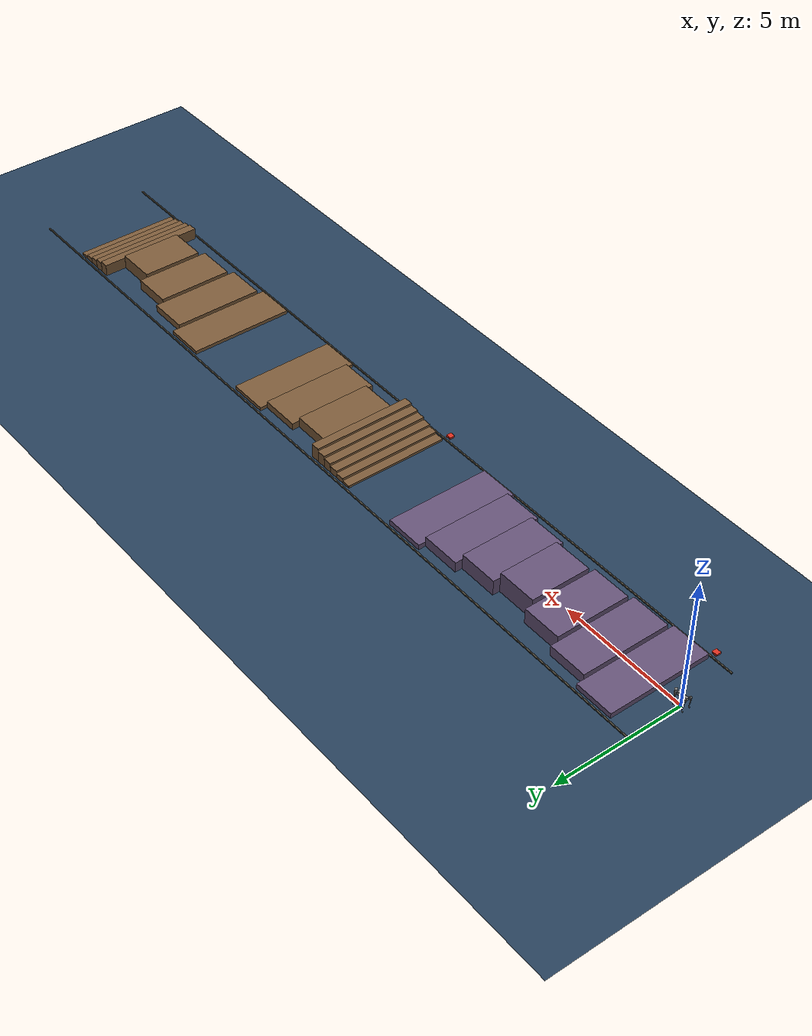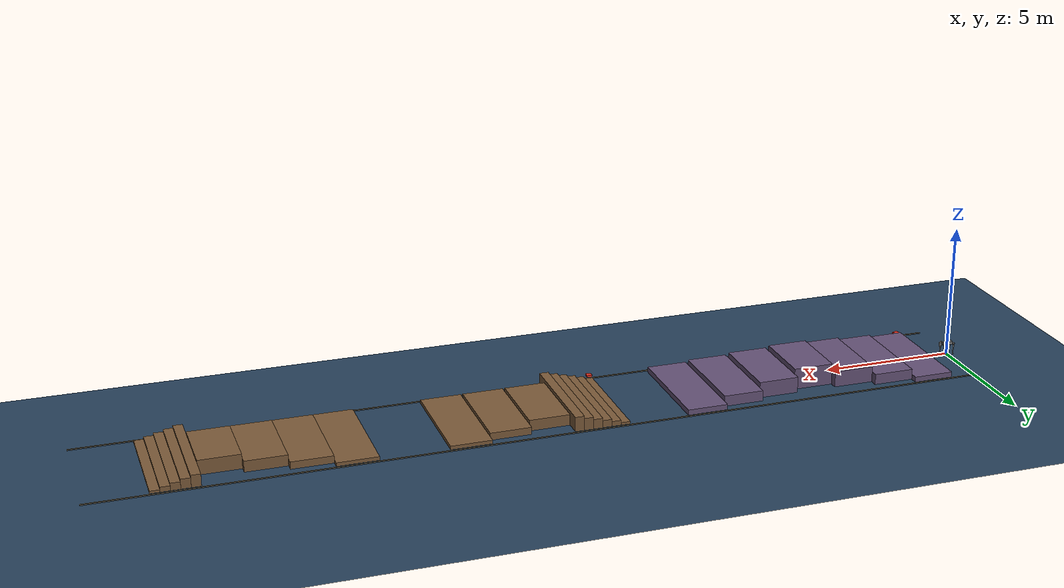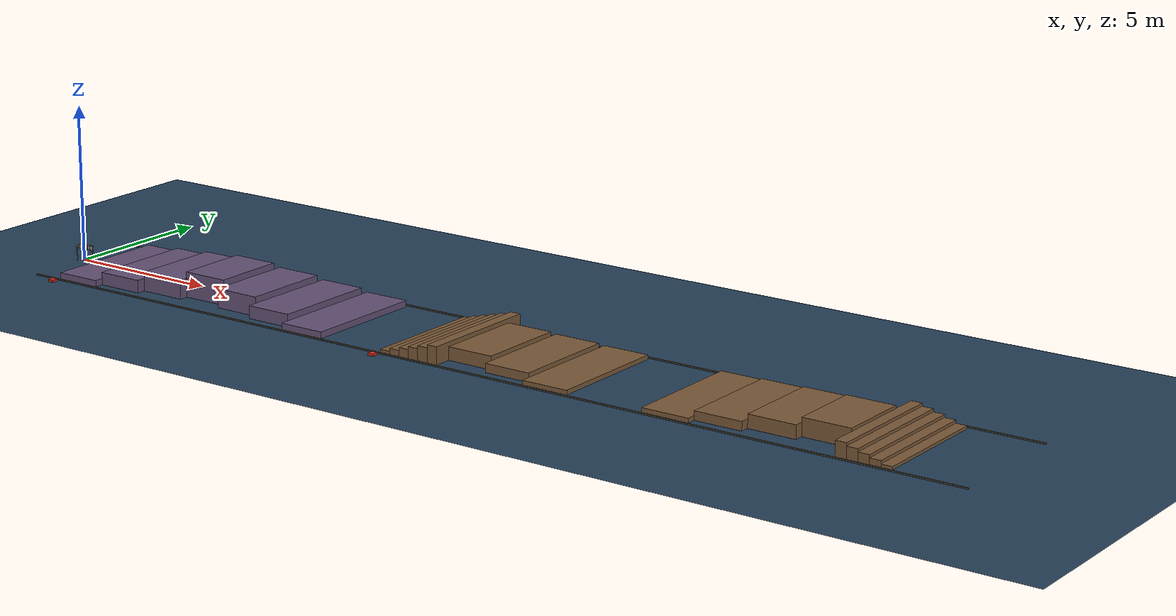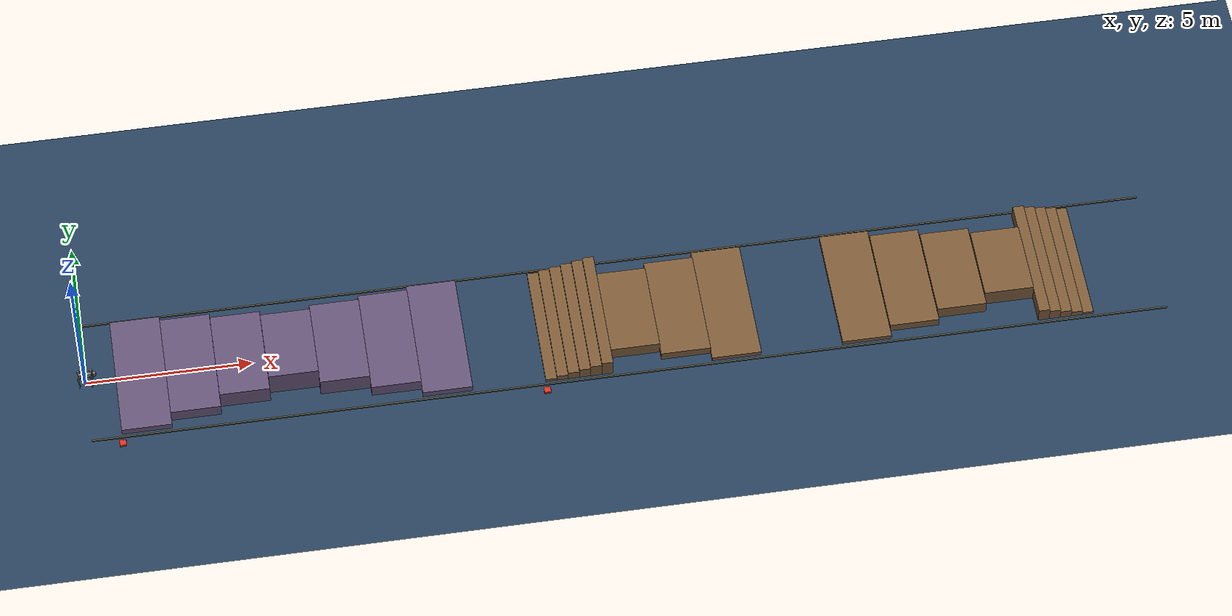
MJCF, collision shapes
<mujoco model="go2 terrain scene">
  <include file="go2.xml" />

  <statistic center="3.00 0 0.35" extent="7.00" />

  <visual>
    <headlight diffuse="0.6 0.6 0.6" ambient="0.3 0.3 0.3" specular="0 0 0" />
    <rgba haze="0.15 0.25 0.35 1" />
    <global azimuth="-130" elevation="-20" />
  </visual>

  <asset>
    <texture type="skybox" builtin="gradient" rgb1="0.3 0.5 0.7" rgb2="0 0 0" width="512" height="3072" />
    <texture type="2d" name="groundplane" builtin="checker" mark="edge" rgb1="0.2 0.3 0.4" rgb2="0.1 0.2 0.3" markrgb="0.8 0.8 0.8" width="300" height="300" />
    <material name="groundplane" texture="groundplane" texuniform="true" texrepeat="5 5" reflectance="0.2" />
    <material name="rough_mat" rgba="0.36 0.34 0.28 1" />
    <material name="rough_dark_mat" rgba="0.25 0.25 0.22 1" />
    <material name="gap_mat" rgba="0.18 0.28 0.32 1" />
    <material name="gap_hard_mat" rgba="0.12 0.20 0.25 1" />
    <material name="pit_mat" rgba="0.20 0.18 0.16 1" />
    <material name="stair_mat" rgba="0.45 0.42 0.36 1" />
    <material name="platform_mat" rgba="0.39 0.32 0.46 1" />
    <material name="platform_high_mat" rgba="0.48 0.35 0.22 1" />
    <material name="marker_red" rgba="0.85 0.18 0.12 1" />
  </asset>

  <worldbody>
    <light pos="0 0 4.0" dir="0 0 -1" directional="true" />
    <geom name="floor" size="0 0 0.05" type="plane" material="groundplane" friction="0.9 0.6 0.02" group="0" />

    <!-- pyramid_stairs_high: step_height_range=(0.08,0.45), step_width=1.5, platform_width=4.0 -->
    <geom name="start_pyramid_stairs_high_0000" type="box" pos="0.900 -2.350 0.035" size="0.100 0.100 0.035" material="marker_red" friction="0.9 0.6 0.02" group="1" />
    <geom name="pyramid_stairs_high_up_01_0001" type="box" pos="1.650 0.000 0.100" size="0.750 2.000 0.100" material="platform_mat" friction="0.9 0.6 0.02" group="0" />
    <geom name="pyramid_stairs_high_up_02_0002" type="box" pos="3.150 0.000 0.200" size="0.750 1.720 0.200" material="platform_mat" friction="0.9 0.6 0.02" group="0" />
    <geom name="pyramid_stairs_high_up_03_0003" type="box" pos="4.650 0.000 0.300" size="0.750 1.440 0.300" material="platform_mat" friction="0.9 0.6 0.02" group="0" />
    <geom name="pyramid_stairs_high_up_04_0004" type="box" pos="6.150 0.000 0.400" size="0.750 1.160 0.400" material="platform_mat" friction="0.9 0.6 0.02" group="0" />
    <geom name="pyramid_stairs_high_down_03_0005" type="box" pos="7.650 0.000 0.300" size="0.750 1.440 0.300" material="platform_mat" friction="0.9 0.6 0.02" group="0" />
    <geom name="pyramid_stairs_high_down_02_0006" type="box" pos="9.150 0.000 0.200" size="0.750 1.720 0.200" material="platform_mat" friction="0.9 0.6 0.02" group="0" />
    <geom name="pyramid_stairs_high_down_01_0007" type="box" pos="10.650 0.000 0.100" size="0.750 2.000 0.100" material="platform_mat" friction="0.9 0.6 0.02" group="0" />

    <!-- pyramid_stairs_inv_high: step_height_range=(0.08,0.45), step_width=1.5, platform_width=4.0 -->
    <geom name="start_pyramid_stairs_inv_high_0008" type="box" pos="13.600 -2.350 0.035" size="0.100 0.100 0.035" material="marker_red" friction="0.9 0.6 0.02" group="1" />
    <geom name="pyramid_stairs_inv_high_entry_00_0009" type="box" pos="13.770 0.000 0.045" size="0.170 2.000 0.045" material="platform_high_mat" friction="0.9 0.6 0.02" group="0" />
    <geom name="pyramid_stairs_inv_high_entry_01_0010" type="box" pos="14.110 0.000 0.091" size="0.170 2.000 0.091" material="platform_high_mat" friction="0.9 0.6 0.02" group="0" />
    <geom name="pyramid_stairs_inv_high_entry_02_0011" type="box" pos="14.450 0.000 0.136" size="0.170 2.000 0.136" material="platform_high_mat" friction="0.9 0.6 0.02" group="0" />
    <geom name="pyramid_stairs_inv_high_entry_03_0012" type="box" pos="14.790 0.000 0.181" size="0.170 2.000 0.181" material="platform_high_mat" friction="0.9 0.6 0.02" group="0" />
    <geom name="pyramid_stairs_inv_high_entry_04_0013" type="box" pos="15.130 0.000 0.226" size="0.170 2.000 0.226" material="platform_high_mat" friction="0.9 0.6 0.02" group="0" />
    <geom name="pyramid_stairs_inv_high_entry_05_0014" type="box" pos="15.470 0.000 0.272" size="0.170 2.000 0.272" material="platform_high_mat" friction="0.9 0.6 0.02" group="0" />
    <geom name="pyramid_stairs_inv_high_down_03_0015" type="box" pos="16.390 0.000 0.204" size="0.750 1.440 0.204" material="platform_high_mat" friction="0.9 0.6 0.02" group="0" />
    <geom name="pyramid_stairs_inv_high_down_02_0016" type="box" pos="17.890 0.000 0.136" size="0.750 1.720 0.136" material="platform_high_mat" friction="0.9 0.6 0.02" group="0" />
    <geom name="pyramid_stairs_inv_high_down_01_0017" type="box" pos="19.390 0.000 0.068" size="0.750 2.000 0.068" material="platform_high_mat" friction="0.9 0.6 0.02" group="0" />
    <geom name="pyramid_stairs_inv_high_up_01_0018" type="box" pos="23.365 0.000 0.068" size="0.750 2.000 0.068" material="platform_high_mat" friction="0.9 0.6 0.02" group="0" />
    <geom name="pyramid_stairs_inv_high_up_02_0019" type="box" pos="24.865 0.000 0.136" size="0.750 1.720 0.136" material="platform_high_mat" friction="0.9 0.6 0.02" group="0" />
    <geom name="pyramid_stairs_inv_high_up_03_0020" type="box" pos="26.365 0.000 0.204" size="0.750 1.440 0.204" material="platform_high_mat" friction="0.9 0.6 0.02" group="0" />
    <geom name="pyramid_stairs_inv_high_up_04_0021" type="box" pos="27.865 0.000 0.272" size="0.750 1.160 0.272" material="platform_high_mat" friction="0.9 0.6 0.02" group="0" />
    <geom name="pyramid_stairs_inv_high_exit_00_0022" type="box" pos="28.785 0.000 0.226" size="0.170 2.000 0.226" material="platform_high_mat" friction="0.9 0.6 0.02" group="0" />
    <geom name="pyramid_stairs_inv_high_exit_01_0023" type="box" pos="29.125 0.000 0.181" size="0.170 2.000 0.181" material="platform_high_mat" friction="0.9 0.6 0.02" group="0" />
    <geom name="pyramid_stairs_inv_high_exit_02_0024" type="box" pos="29.465 0.000 0.136" size="0.170 2.000 0.136" material="platform_high_mat" friction="0.9 0.6 0.02" group="0" />
    <geom name="pyramid_stairs_inv_high_exit_03_0025" type="box" pos="29.805 0.000 0.091" size="0.170 2.000 0.091" material="platform_high_mat" friction="0.9 0.6 0.02" group="0" />
    <geom name="pyramid_stairs_inv_high_exit_04_0026" type="box" pos="30.145 0.000 0.045" size="0.170 2.000 0.045" material="platform_high_mat" friction="0.9 0.6 0.02" group="0" />

    <!-- visual side lanes outside normal height scan width -->
    <geom name="side_lane_0_0027" type="box" pos="16.277 -2.120 0.018" size="16.277 0.025 0.018" material="rough_mat" friction="0.9 0.6 0.02" group="1" />
    <geom name="side_lane_1_0028" type="box" pos="16.277 2.120 0.018" size="16.277 0.025 0.018" material="rough_mat" friction="0.9 0.6 0.02" group="1" />
  </worldbody>
</mujoco>

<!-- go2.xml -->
<mujoco model="go2">
  <compiler angle="radian" meshdir="assets" autolimits="true" />

  <option cone="elliptic" impratio="100" />

  <default>
    <default class="go2">
      <geom friction="0.4" margin="0.001" condim="1"/>
      <joint axis="0 1 0" damping="0.1" armature="0.01" frictionloss="0.2"/>
      <motor ctrlrange="-23.7 23.7"/>
      <default class="abduction">
        <joint axis="1 0 0" range="-1.0472 1.0472"/>
      </default>
      <default class="hip">
        <default class="front_hip">
          <joint range="-1.5708 3.4907"/>
        </default>
        <default class="back_hip">
          <joint range="-0.5236 4.5379"/>
        </default>
      </default>
      <default class="knee">
        <joint range="-2.7227 -0.83776"/>
        <motor ctrlrange="-45.43 45.43"/>
      </default>
      <default class="visual">
        <geom type="mesh" contype="0" conaffinity="0" group="2"/>
      </default>
      <default class="collision">
        <geom group="3"/>
        <default class="foot">
          <geom size="0.022" pos="-0.002 0 -0.213" priority="1" condim="6"
            friction="0.4 0.02 0.01"/>
        </default>
      </default>
    </default>
  </default>

  <asset>
    <material name="metal" rgba=".9 .95 .95 1" />
    <material name="black" rgba="0 0 0 1" />
    <material name="white" rgba="1 1 1 1" />
    <material name="gray" rgba="0.671705 0.692426 0.774270 1" />

    <mesh file="base_0.obj" />
    <mesh file="base_1.obj" />
    <mesh file="base_2.obj" />
    <mesh file="base_3.obj" />
    <mesh file="base_4.obj" />
    <mesh file="hip_0.obj" />
    <mesh file="hip_1.obj" />
    <mesh file="thigh_0.obj" />
    <mesh file="thigh_1.obj" />
    <mesh file="thigh_mirror_0.obj" />
    <mesh file="thigh_mirror_1.obj" />
    <mesh file="calf_0.obj" />
    <mesh file="calf_1.obj" />
    <mesh file="calf_mirror_0.obj" />
    <mesh file="calf_mirror_1.obj" />
    <mesh file="foot.obj" />
  </asset>

  <worldbody>
    <body name="base_link" pos="0 0 0.445" childclass="go2">
      <inertial pos="0.021112 0 -0.005366" quat="-0.000543471 0.713435 -0.00173769 0.700719"
        mass="6.921"
        diaginertia="0.107027 0.0980771 0.0244531" />
      <freejoint />
      <geom mesh="base_0" material="black" class="visual" />
      <geom mesh="base_1" material="black" class="visual" />
      <geom mesh="base_2" material="black" class="visual" />
      <geom mesh="base_3" material="white" class="visual" />
      <geom mesh="base_4" material="gray" class="visual" />
      <geom size="0.1881 0.04675 0.057" type="box" class="collision" />
      <geom size="0.05 0.045" pos="0.285 0 0.01" type="cylinder" class="collision" />
      <geom size="0.047" pos="0.293 0 -0.06" class="collision" />
      <site name="imu" pos="-0.02557 0 0.04232" />
      <body name="FL_hip" pos="0.1934 0.0465 0">
        <inertial pos="-0.0054 0.00194 -0.000105" quat="0.497014 0.499245 0.505462 0.498237"
          mass="0.678"
          diaginertia="0.00088403 0.000596003 0.000479967" />
        <joint name="FL_hip_joint" class="abduction" />
        <geom mesh="hip_0" material="metal" class="visual" />
        <geom mesh="hip_1" material="gray" class="visual" />
        <geom size="0.046 0.02" pos="0 0.08 0" quat="1 1 0 0" type="cylinder" class="collision" />
        <body name="FL_thigh" pos="0 0.0955 0">
          <inertial pos="-0.00374 -0.0223 -0.0327" quat="0.829533 0.0847635 -0.0200632 0.551623"
            mass="1.152"
            diaginertia="0.00594973 0.00584149 0.000878787" />
          <joint name="FL_thigh_joint" class="front_hip" />
          <geom mesh="thigh_0" material="metal" class="visual" />
          <geom mesh="thigh_1" material="gray" class="visual" />
          <geom size="0.1065 0.01225 0.017" pos="0 0 -0.1065" quat="0.707107 0 0.707107 0"
            type="box" class="collision" />
          <body name="FL_calf" pos="0 0 -0.213">
            <inertial pos="0.00629595 -0.000622121 -0.141417"
              quat="0.710672 0.00154099 -0.00450087 0.703508"
              mass="0.241352" diaginertia="0.0014901 0.00146356 5.31397e-05" />
            <joint name="FL_calf_joint" class="knee" />
            <geom mesh="calf_0" material="gray" class="visual" />
            <geom mesh="calf_1" material="black" class="visual" />
            <geom size="0.012 0.06" pos="0.008 0 -0.06" quat="0.994493 0 -0.104807 0"
              type="cylinder" class="collision" />
            <geom size="0.011 0.0325" pos="0.02 0 -0.148" quat="0.999688 0 0.0249974 0"
              type="cylinder" class="collision" />
            <geom pos="0 0 -0.213" mesh="foot" class="visual" material="black" />
            <geom name="FL" class="foot" />
            <body name="FL_foot" pos="0 0 -0.213" />
          </body>
        </body>
      </body>
      <body name="FR_hip" pos="0.1934 -0.0465 0">
        <inertial pos="-0.0054 -0.00194 -0.000105" quat="0.498237 0.505462 0.499245 0.497014"
          mass="0.678"
          diaginertia="0.00088403 0.000596003 0.000479967" />
        <joint name="FR_hip_joint" class="abduction" />
        <geom mesh="hip_0" material="metal" class="visual" quat="4.63268e-05 1 0 0" />
        <geom mesh="hip_1" material="gray" class="visual" quat="4.63268e-05 1 0 0" />
        <geom size="0.046 0.02" pos="0 -0.08 0" quat="0.707107 0.707107 0 0" type="cylinder"
          class="collision" />
        <body name="FR_thigh" pos="0 -0.0955 0">
          <inertial pos="-0.00374 0.0223 -0.0327" quat="0.551623 -0.0200632 0.0847635 0.829533"
            mass="1.152"
            diaginertia="0.00594973 0.00584149 0.000878787" />
          <joint name="FR_thigh_joint" class="front_hip" />
          <geom mesh="thigh_mirror_0" material="metal" class="visual" />
          <geom mesh="thigh_mirror_1" material="gray" class="visual" />
          <geom size="0.1065 0.01225 0.017" pos="0 0 -0.1065" quat="0.707107 0 0.707107 0"
            type="box" class="collision" />
          <body name="FR_calf" pos="0 0 -0.213">
            <inertial pos="0.00629595 0.000622121 -0.141417"
              quat="0.703508 -0.00450087 0.00154099 0.710672"
              mass="0.241352" diaginertia="0.0014901 0.00146356 5.31397e-05" />
            <joint name="FR_calf_joint" class="knee" />
            <geom mesh="calf_mirror_0" material="gray" class="visual" />
            <geom mesh="calf_mirror_1" material="black" class="visual" />
            <geom size="0.013 0.06" pos="0.01 0 -0.06" quat="0.995004 0 -0.0998334 0"
              type="cylinder" class="collision" />
            <geom size="0.011 0.0325" pos="0.02 0 -0.148" quat="0.999688 0 0.0249974 0"
              type="cylinder" class="collision" />
            <geom pos="0 0 -0.213" mesh="foot" class="visual" material="black" />
            <geom name="FR" class="foot" />
            <body name="FR_foot" pos="0 0 -0.213" />
          </body>
        </body>
      </body>
      <body name="RL_hip" pos="-0.1934 0.0465 0">
        <inertial pos="0.0054 0.00194 -0.000105" quat="0.505462 0.498237 0.497014 0.499245"
          mass="0.678"
          diaginertia="0.00088403 0.000596003 0.000479967" />
        <joint name="RL_hip_joint" class="abduction" />
        <geom mesh="hip_0" material="metal" class="visual" quat="4.63268e-05 0 1 0" />
        <geom mesh="hip_1" material="gray" class="visual" quat="4.63268e-05 0 1 0" />
        <geom size="0.046 0.02" pos="0 0.08 0" quat="0.707107 0.707107 0 0" type="cylinder"
          class="collision" />
        <body name="RL_thigh" pos="0 0.0955 0">
          <inertial pos="-0.00374 -0.0223 -0.0327" quat="0.829533 0.0847635 -0.0200632 0.551623"
            mass="1.152"
            diaginertia="0.00594973 0.00584149 0.000878787" />
          <joint name="RL_thigh_joint" class="back_hip" />
          <geom mesh="thigh_0" material="metal" class="visual" />
          <geom mesh="thigh_1" material="gray" class="visual" />
          <geom size="0.1065 0.01225 0.017" pos="0 0 -0.1065" quat="0.707107 0 0.707107 0"
            type="box" class="collision" />
          <body name="RL_calf" pos="0 0 -0.213">
            <inertial pos="0.00629595 -0.000622121 -0.141417"
              quat="0.710672 0.00154099 -0.00450087 0.703508"
              mass="0.241352" diaginertia="0.0014901 0.00146356 5.31397e-05" />
            <joint name="RL_calf_joint" class="knee" />
            <geom mesh="calf_0" material="gray" class="visual" />
            <geom mesh="calf_1" material="black" class="visual" />
            <geom size="0.013 0.06" pos="0.01 0 -0.06" quat="0.995004 0 -0.0998334 0"
              type="cylinder" class="collision" />
            <geom size="0.011 0.0325" pos="0.02 0 -0.148" quat="0.999688 0 0.0249974 0"
              type="cylinder" class="collision" />
            <geom pos="0 0 -0.213" mesh="foot" class="visual" material="black" />
            <geom name="RL" class="foot" />
            <body name="RL_foot" pos="0 0 -0.213" />
          </body>
        </body>
      </body>
      <body name="RR_hip" pos="-0.1934 -0.0465 0">
        <inertial pos="0.0054 -0.00194 -0.000105" quat="0.499245 0.497014 0.498237 0.505462"
          mass="0.678"
          diaginertia="0.00088403 0.000596003 0.000479967" />
        <joint name="RR_hip_joint" class="abduction" />
        <geom mesh="hip_0" material="metal" class="visual"
          quat="2.14617e-09 4.63268e-05 4.63268e-05 -1" />
        <geom mesh="hip_1" material="gray" class="visual"
          quat="2.14617e-09 4.63268e-05 4.63268e-05 -1" />
        <geom size="0.046 0.02" pos="0 -0.08 0" quat="0.707107 0.707107 0 0" type="cylinder"
          class="collision" />
        <body name="RR_thigh" pos="0 -0.0955 0">
          <inertial pos="-0.00374 0.0223 -0.0327" quat="0.551623 -0.0200632 0.0847635 0.829533"
            mass="1.152"
            diaginertia="0.00594973 0.00584149 0.000878787" />
          <joint name="RR_thigh_joint" class="back_hip" />
          <geom mesh="thigh_mirror_0" material="metal" class="visual" />
          <geom mesh="thigh_mirror_1" material="gray" class="visual" />
          <geom size="0.1065 0.01225 0.017" pos="0 0 -0.1065" quat="0.707107 0 0.707107 0"
            type="box" class="collision" />
          <body name="RR_calf" pos="0 0 -0.213">
            <inertial pos="0.00629595 0.000622121 -0.141417"
              quat="0.703508 -0.00450087 0.00154099 0.710672"
              mass="0.241352" diaginertia="0.0014901 0.00146356 5.31397e-05" />
            <joint name="RR_calf_joint" class="knee" />
            <geom mesh="calf_mirror_0" material="gray" class="visual" />
            <geom mesh="calf_mirror_1" material="black" class="visual" />
            <geom size="0.013 0.06" pos="0.01 0 -0.06" quat="0.995004 0 -0.0998334 0"
              type="cylinder" class="collision" />
            <geom size="0.011 0.0325" pos="0.02 0 -0.148" quat="0.999688 0 0.0249974 0"
              type="cylinder" class="collision" />
            <geom pos="0 0 -0.213" mesh="foot" class="visual" material="black" />
            <geom name="RR" class="foot" />
            <body name="RR_foot" pos="0 0 -0.213" />
          </body>
        </body>
      </body>
    </body>
  </worldbody>

  <actuator>
    <motor class="abduction" name="FR_hip" joint="FR_hip_joint" />
    <motor class="hip" name="FR_thigh" joint="FR_thigh_joint" />
    <motor class="knee" name="FR_calf" joint="FR_calf_joint" />
    <motor class="abduction" name="FL_hip" joint="FL_hip_joint" />
    <motor class="hip" name="FL_thigh" joint="FL_thigh_joint" />
    <motor class="knee" name="FL_calf" joint="FL_calf_joint" />
    <motor class="abduction" name="RR_hip" joint="RR_hip_joint" />
    <motor class="hip" name="RR_thigh" joint="RR_thigh_joint" />
    <motor class="knee" name="RR_calf" joint="RR_calf_joint" />
    <motor class="abduction" name="RL_hip" joint="RL_hip_joint" />
    <motor class="hip" name="RL_thigh" joint="RL_thigh_joint" />
    <motor class="knee" name="RL_calf" joint="RL_calf_joint" />
  </actuator>

  <sensor>
    <jointpos name="FR_hip_pos" joint="FR_hip_joint" />
    <jointpos name="FR_thigh_pos" joint="FR_thigh_joint" />
    <jointpos name="FR_calf_pos" joint="FR_calf_joint" />
    <jointpos name="FL_hip_pos" joint="FL_hip_joint" />
    <jointpos name="FL_thigh_pos" joint="FL_thigh_joint" />
    <jointpos name="FL_calf_pos" joint="FL_calf_joint" />
    <jointpos name="RR_hip_pos" joint="RR_hip_joint" />
    <jointpos name="RR_thigh_pos" joint="RR_thigh_joint" />
    <jointpos name="RR_calf_pos" joint="RR_calf_joint" />
    <jointpos name="RL_hip_pos" joint="RL_hip_joint" />
    <jointpos name="RL_thigh_pos" joint="RL_thigh_joint" />
    <jointpos name="RL_calf_pos" joint="RL_calf_joint" />

    <jointvel name="FR_hip_vel" joint="FR_hip_joint" />
    <jointvel name="FR_thigh_vel" joint="FR_thigh_joint" />
    <jointvel name="FR_calf_vel" joint="FR_calf_joint" />
    <jointvel name="FL_hip_vel" joint="FL_hip_joint" />
    <jointvel name="FL_thigh_vel" joint="FL_thigh_joint" />
    <jointvel name="FL_calf_vel" joint="FL_calf_joint" />
    <jointvel name="RR_hip_vel" joint="RR_hip_joint" />
    <jointvel name="RR_thigh_vel" joint="RR_thigh_joint" />
    <jointvel name="RR_calf_vel" joint="RR_calf_joint" />
    <jointvel name="RL_hip_vel" joint="RL_hip_joint" />
    <jointvel name="RL_thigh_vel" joint="RL_thigh_joint" />
    <jointvel name="RL_calf_vel" joint="RL_calf_joint" />

    <jointactuatorfrc name="FR_hip_torque" joint="FR_hip_joint" noise="0.01" />
    <jointactuatorfrc name="FR_thigh_torque" joint="FR_thigh_joint" noise="0.01" />
    <jointactuatorfrc name="FR_calf_torque" joint="FR_calf_joint" noise="0.01" />
    <jointactuatorfrc name="FL_hip_torque" joint="FL_hip_joint" noise="0.01" />
    <jointactuatorfrc name="FL_thigh_torque" joint="FL_thigh_joint" noise="0.01" />
    <jointactuatorfrc name="FL_calf_torque" joint="FL_calf_joint" noise="0.01" />
    <jointactuatorfrc name="RR_hip_torque" joint="RR_hip_joint" noise="0.01" />
    <jointactuatorfrc name="RR_thigh_torque" joint="RR_thigh_joint" noise="0.01" />
    <jointactuatorfrc name="RR_calf_torque" joint="RR_calf_joint" noise="0.01" />
    <jointactuatorfrc name="RL_hip_torque" joint="RL_hip_joint" noise="0.01" />
    <jointactuatorfrc name="RL_thigh_torque" joint="RL_thigh_joint" noise="0.01" />
    <jointactuatorfrc name="RL_calf_torque" joint="RL_calf_joint" noise="0.01" />

    <framequat name="imu_quat" objtype="site" objname="imu" />
    <gyro name="imu_gyro" site="imu" />
    <accelerometer name="imu_acc" site="imu" />

    <framepos name="frame_pos" objtype="site" objname="imu" />
    <framelinvel name="frame_vel" objtype="site" objname="imu" />
  </sensor>

  <keyframe>
    <key name="home" qpos="0 0 0.27 1 0 0 0 0 0.9 -1.8 0 0.9 -1.8 0 0.9 -1.8 0 0.9 -1.8"
      ctrl="0 0.9 -1.8 0 0.9 -1.8 0 0.9 -1.8 0 0.9 -1.8" />
  </keyframe>
</mujoco>
